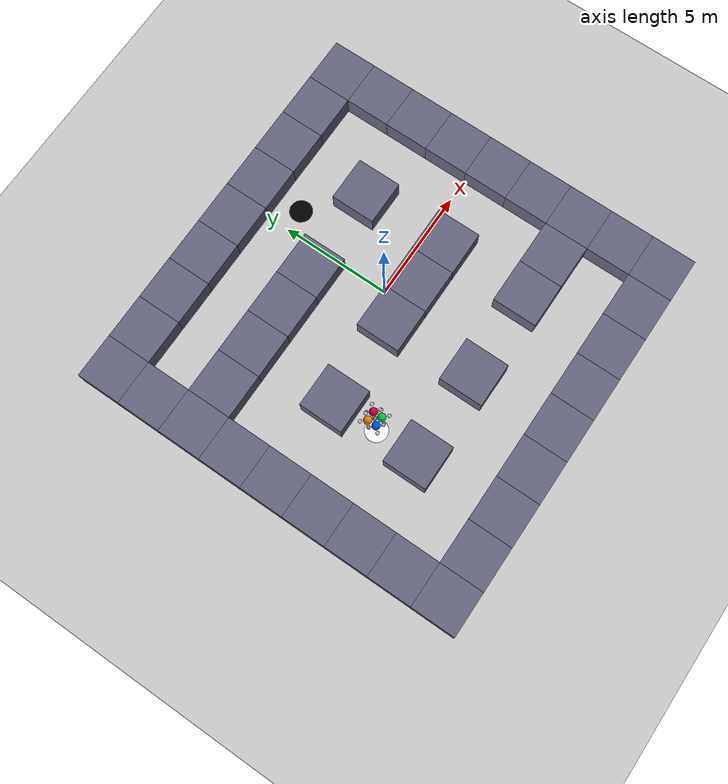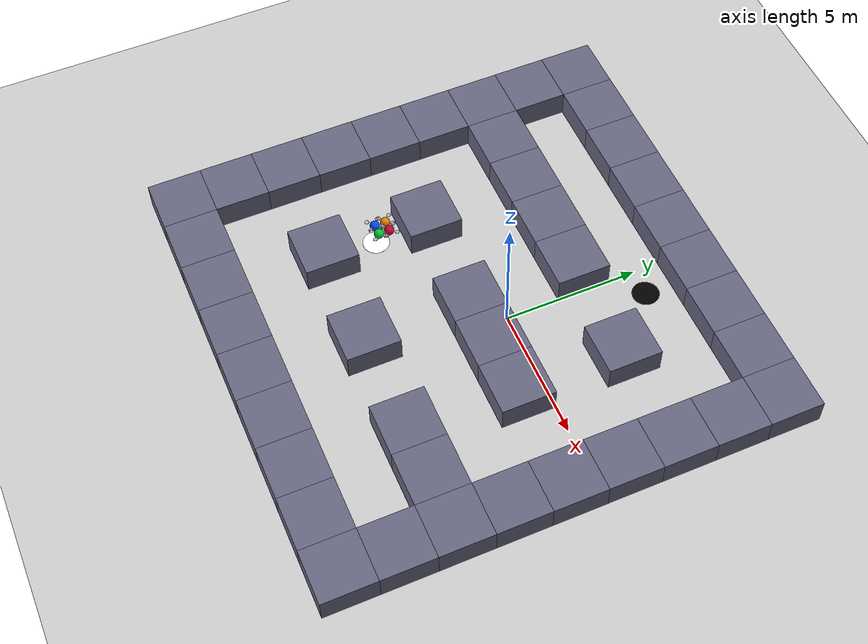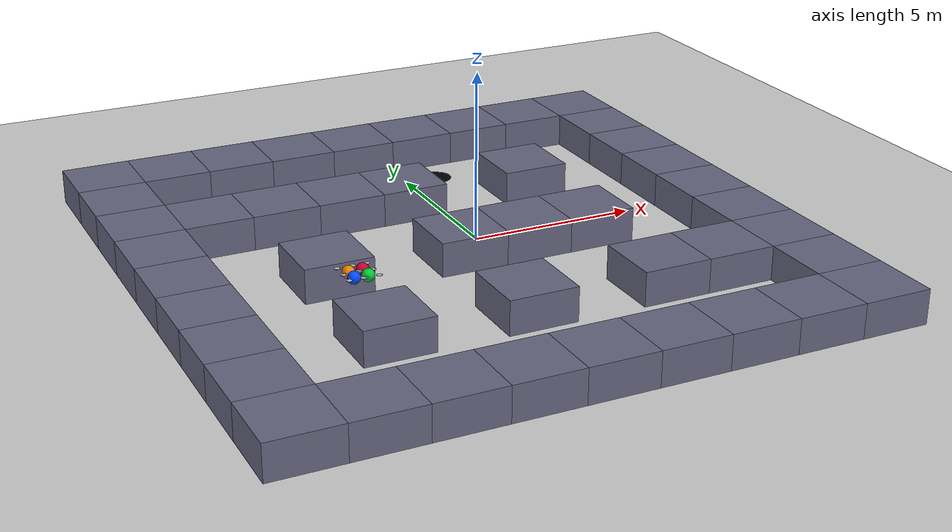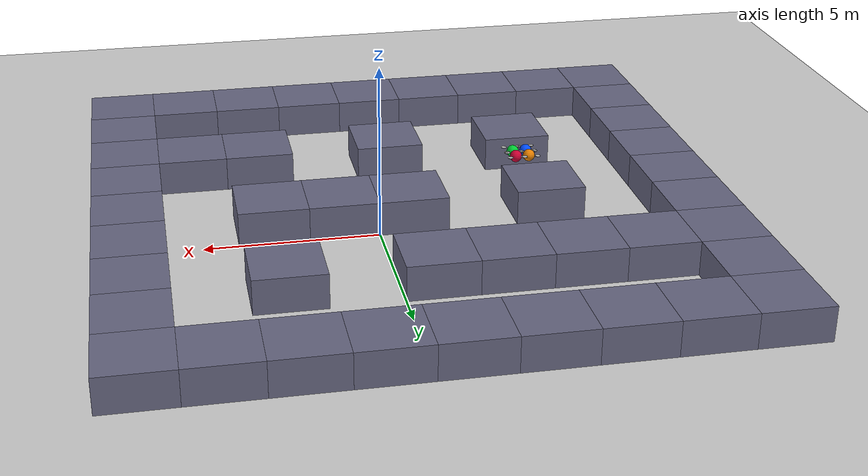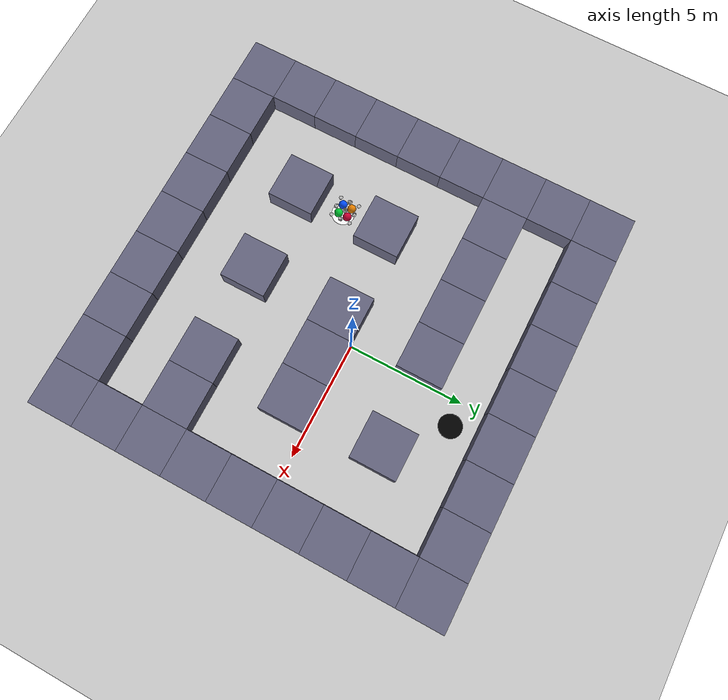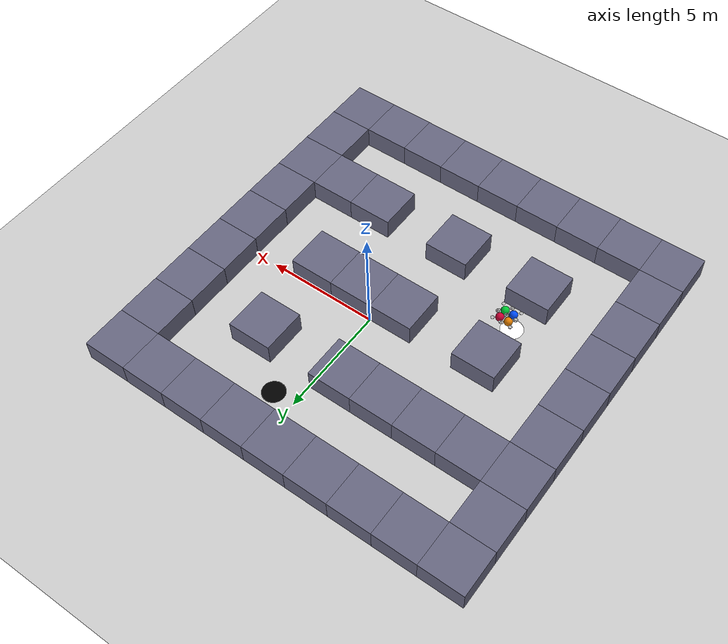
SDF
<sdf version="1.8">
 <world name="stage_5_maze_like.sdf">
  <model name="ground_plane">
   <static>true</static>
   <link name="link">
    <collision name="collision">
     <geometry><plane><normal>0 0 1</normal><size>200 200</size></plane></geometry>
    </collision>
    <visual name="visual">
     <geometry><plane><normal>0 0 1</normal><size>200 200</size></plane></geometry>
     <material><ambient>0.8 0.8 0.8 1</ambient><diffuse>0.8 0.8 0.8 1</diffuse></material>
    </visual>
   </link>
  </model>
  <model name="wall_0">
   <static>true</static>
   <pose>-9.0 -9.0 0.5 0 0 0</pose>
   <link name="link">
    <collision name="collision"><geometry><box><size>2.0 2.0 1.0</size></box></geometry></collision>
    <visual name="visual">
     <geometry><box><size>2.0 2.0 1.0</size></box></geometry>
     <material><ambient>0.3 0.3 0.4 1</ambient><diffuse>0.4 0.4 0.5 1</diffuse></material>
    </visual>
   </link>
  </model>
  <model name="wall_1">
   <static>true</static>
   <pose>-9.0 -7.0 0.5 0 0 0</pose>
   <link name="link">
    <collision name="collision"><geometry><box><size>2.0 2.0 1.0</size></box></geometry></collision>
    <visual name="visual">
     <geometry><box><size>2.0 2.0 1.0</size></box></geometry>
     <material><ambient>0.3 0.3 0.4 1</ambient><diffuse>0.4 0.4 0.5 1</diffuse></material>
    </visual>
   </link>
  </model>
  <model name="wall_2">
   <static>true</static>
   <pose>-9.0 -5.0 0.5 0 0 0</pose>
   <link name="link">
    <collision name="collision"><geometry><box><size>2.0 2.0 1.0</size></box></geometry></collision>
    <visual name="visual">
     <geometry><box><size>2.0 2.0 1.0</size></box></geometry>
     <material><ambient>0.3 0.3 0.4 1</ambient><diffuse>0.4 0.4 0.5 1</diffuse></material>
    </visual>
   </link>
  </model>
  <model name="wall_3">
   <static>true</static>
   <pose>-9.0 -3.0 0.5 0 0 0</pose>
   <link name="link">
    <collision name="collision"><geometry><box><size>2.0 2.0 1.0</size></box></geometry></collision>
    <visual name="visual">
     <geometry><box><size>2.0 2.0 1.0</size></box></geometry>
     <material><ambient>0.3 0.3 0.4 1</ambient><diffuse>0.4 0.4 0.5 1</diffuse></material>
    </visual>
   </link>
  </model>
  <model name="wall_4">
   <static>true</static>
   <pose>-9.0 -1.0 0.5 0 0 0</pose>
   <link name="link">
    <collision name="collision"><geometry><box><size>2.0 2.0 1.0</size></box></geometry></collision>
    <visual name="visual">
     <geometry><box><size>2.0 2.0 1.0</size></box></geometry>
     <material><ambient>0.3 0.3 0.4 1</ambient><diffuse>0.4 0.4 0.5 1</diffuse></material>
    </visual>
   </link>
  </model>
  <model name="wall_5">
   <static>true</static>
   <pose>-9.0 1.0 0.5 0 0 0</pose>
   <link name="link">
    <collision name="collision"><geometry><box><size>2.0 2.0 1.0</size></box></geometry></collision>
    <visual name="visual">
     <geometry><box><size>2.0 2.0 1.0</size></box></geometry>
     <material><ambient>0.3 0.3 0.4 1</ambient><diffuse>0.4 0.4 0.5 1</diffuse></material>
    </visual>
   </link>
  </model>
  <model name="wall_6">
   <static>true</static>
   <pose>-9.0 3.0 0.5 0 0 0</pose>
   <link name="link">
    <collision name="collision"><geometry><box><size>2.0 2.0 1.0</size></box></geometry></collision>
    <visual name="visual">
     <geometry><box><size>2.0 2.0 1.0</size></box></geometry>
     <material><ambient>0.3 0.3 0.4 1</ambient><diffuse>0.4 0.4 0.5 1</diffuse></material>
    </visual>
   </link>
  </model>
  <model name="wall_7">
   <static>true</static>
   <pose>-9.0 5.0 0.5 0 0 0</pose>
   <link name="link">
    <collision name="collision"><geometry><box><size>2.0 2.0 1.0</size></box></geometry></collision>
    <visual name="visual">
     <geometry><box><size>2.0 2.0 1.0</size></box></geometry>
     <material><ambient>0.3 0.3 0.4 1</ambient><diffuse>0.4 0.4 0.5 1</diffuse></material>
    </visual>
   </link>
  </model>
  <model name="wall_8">
   <static>true</static>
   <pose>-9.0 7.0 0.5 0 0 0</pose>
   <link name="link">
    <collision name="collision"><geometry><box><size>2.0 2.0 1.0</size></box></geometry></collision>
    <visual name="visual">
     <geometry><box><size>2.0 2.0 1.0</size></box></geometry>
     <material><ambient>0.3 0.3 0.4 1</ambient><diffuse>0.4 0.4 0.5 1</diffuse></material>
    </visual>
   </link>
  </model>
  <model name="wall_9">
   <static>true</static>
   <pose>-7.0 -9.0 0.5 0 0 0</pose>
   <link name="link">
    <collision name="collision"><geometry><box><size>2.0 2.0 1.0</size></box></geometry></collision>
    <visual name="visual">
     <geometry><box><size>2.0 2.0 1.0</size></box></geometry>
     <material><ambient>0.3 0.3 0.4 1</ambient><diffuse>0.4 0.4 0.5 1</diffuse></material>
    </visual>
   </link>
  </model>
  <model name="wall_10">
   <static>true</static>
   <pose>-7.0 3.0 0.5 0 0 0</pose>
   <link name="link">
    <collision name="collision"><geometry><box><size>2.0 2.0 1.0</size></box></geometry></collision>
    <visual name="visual">
     <geometry><box><size>2.0 2.0 1.0</size></box></geometry>
     <material><ambient>0.3 0.3 0.4 1</ambient><diffuse>0.4 0.4 0.5 1</diffuse></material>
    </visual>
   </link>
  </model>
  <model name="wall_11">
   <static>true</static>
   <pose>-7.0 7.0 0.5 0 0 0</pose>
   <link name="link">
    <collision name="collision"><geometry><box><size>2.0 2.0 1.0</size></box></geometry></collision>
    <visual name="visual">
     <geometry><box><size>2.0 2.0 1.0</size></box></geometry>
     <material><ambient>0.3 0.3 0.4 1</ambient><diffuse>0.4 0.4 0.5 1</diffuse></material>
    </visual>
   </link>
  </model>
  <model name="wall_12">
   <static>true</static>
   <pose>-5.0 -9.0 0.5 0 0 0</pose>
   <link name="link">
    <collision name="collision"><geometry><box><size>2.0 2.0 1.0</size></box></geometry></collision>
    <visual name="visual">
     <geometry><box><size>2.0 2.0 1.0</size></box></geometry>
     <material><ambient>0.3 0.3 0.4 1</ambient><diffuse>0.4 0.4 0.5 1</diffuse></material>
    </visual>
   </link>
  </model>
  <model name="wall_13">
   <static>true</static>
   <pose>-5.0 -5.0 0.5 0 0 0</pose>
   <link name="link">
    <collision name="collision"><geometry><box><size>2.0 2.0 1.0</size></box></geometry></collision>
    <visual name="visual">
     <geometry><box><size>2.0 2.0 1.0</size></box></geometry>
     <material><ambient>0.3 0.3 0.4 1</ambient><diffuse>0.4 0.4 0.5 1</diffuse></material>
    </visual>
   </link>
  </model>
  <model name="wall_14">
   <static>true</static>
   <pose>-5.0 -1.0 0.5 0 0 0</pose>
   <link name="link">
    <collision name="collision"><geometry><box><size>2.0 2.0 1.0</size></box></geometry></collision>
    <visual name="visual">
     <geometry><box><size>2.0 2.0 1.0</size></box></geometry>
     <material><ambient>0.3 0.3 0.4 1</ambient><diffuse>0.4 0.4 0.5 1</diffuse></material>
    </visual>
   </link>
  </model>
  <model name="wall_15">
   <static>true</static>
   <pose>-5.0 3.0 0.5 0 0 0</pose>
   <link name="link">
    <collision name="collision"><geometry><box><size>2.0 2.0 1.0</size></box></geometry></collision>
    <visual name="visual">
     <geometry><box><size>2.0 2.0 1.0</size></box></geometry>
     <material><ambient>0.3 0.3 0.4 1</ambient><diffuse>0.4 0.4 0.5 1</diffuse></material>
    </visual>
   </link>
  </model>
  <model name="wall_16">
   <static>true</static>
   <pose>-5.0 7.0 0.5 0 0 0</pose>
   <link name="link">
    <collision name="collision"><geometry><box><size>2.0 2.0 1.0</size></box></geometry></collision>
    <visual name="visual">
     <geometry><box><size>2.0 2.0 1.0</size></box></geometry>
     <material><ambient>0.3 0.3 0.4 1</ambient><diffuse>0.4 0.4 0.5 1</diffuse></material>
    </visual>
   </link>
  </model>
  <model name="wall_17">
   <static>true</static>
   <pose>-3.0 -9.0 0.5 0 0 0</pose>
   <link name="link">
    <collision name="collision"><geometry><box><size>2.0 2.0 1.0</size></box></geometry></collision>
    <visual name="visual">
     <geometry><box><size>2.0 2.0 1.0</size></box></geometry>
     <material><ambient>0.3 0.3 0.4 1</ambient><diffuse>0.4 0.4 0.5 1</diffuse></material>
    </visual>
   </link>
  </model>
  <model name="wall_18">
   <static>true</static>
   <pose>-3.0 3.0 0.5 0 0 0</pose>
   <link name="link">
    <collision name="collision"><geometry><box><size>2.0 2.0 1.0</size></box></geometry></collision>
    <visual name="visual">
     <geometry><box><size>2.0 2.0 1.0</size></box></geometry>
     <material><ambient>0.3 0.3 0.4 1</ambient><diffuse>0.4 0.4 0.5 1</diffuse></material>
    </visual>
   </link>
  </model>
  <model name="wall_19">
   <static>true</static>
   <pose>-3.0 7.0 0.5 0 0 0</pose>
   <link name="link">
    <collision name="collision"><geometry><box><size>2.0 2.0 1.0</size></box></geometry></collision>
    <visual name="visual">
     <geometry><box><size>2.0 2.0 1.0</size></box></geometry>
     <material><ambient>0.3 0.3 0.4 1</ambient><diffuse>0.4 0.4 0.5 1</diffuse></material>
    </visual>
   </link>
  </model>
  <model name="wall_20">
   <static>true</static>
   <pose>-1.0 -9.0 0.5 0 0 0</pose>
   <link name="link">
    <collision name="collision"><geometry><box><size>2.0 2.0 1.0</size></box></geometry></collision>
    <visual name="visual">
     <geometry><box><size>2.0 2.0 1.0</size></box></geometry>
     <material><ambient>0.3 0.3 0.4 1</ambient><diffuse>0.4 0.4 0.5 1</diffuse></material>
    </visual>
   </link>
  </model>
  <model name="wall_21">
   <static>true</static>
   <pose>-1.0 -5.0 0.5 0 0 0</pose>
   <link name="link">
    <collision name="collision"><geometry><box><size>2.0 2.0 1.0</size></box></geometry></collision>
    <visual name="visual">
     <geometry><box><size>2.0 2.0 1.0</size></box></geometry>
     <material><ambient>0.3 0.3 0.4 1</ambient><diffuse>0.4 0.4 0.5 1</diffuse></material>
    </visual>
   </link>
  </model>
  <model name="wall_22">
   <static>true</static>
   <pose>-1.0 -1.0 0.5 0 0 0</pose>
   <link name="link">
    <collision name="collision"><geometry><box><size>2.0 2.0 1.0</size></box></geometry></collision>
    <visual name="visual">
     <geometry><box><size>2.0 2.0 1.0</size></box></geometry>
     <material><ambient>0.3 0.3 0.4 1</ambient><diffuse>0.4 0.4 0.5 1</diffuse></material>
    </visual>
   </link>
  </model>
  <model name="wall_23">
   <static>true</static>
   <pose>-1.0 3.0 0.5 0 0 0</pose>
   <link name="link">
    <collision name="collision"><geometry><box><size>2.0 2.0 1.0</size></box></geometry></collision>
    <visual name="visual">
     <geometry><box><size>2.0 2.0 1.0</size></box></geometry>
     <material><ambient>0.3 0.3 0.4 1</ambient><diffuse>0.4 0.4 0.5 1</diffuse></material>
    </visual>
   </link>
  </model>
  <model name="wall_24">
   <static>true</static>
   <pose>-1.0 7.0 0.5 0 0 0</pose>
   <link name="link">
    <collision name="collision"><geometry><box><size>2.0 2.0 1.0</size></box></geometry></collision>
    <visual name="visual">
     <geometry><box><size>2.0 2.0 1.0</size></box></geometry>
     <material><ambient>0.3 0.3 0.4 1</ambient><diffuse>0.4 0.4 0.5 1</diffuse></material>
    </visual>
   </link>
  </model>
  <model name="wall_25">
   <static>true</static>
   <pose>1.0 -9.0 0.5 0 0 0</pose>
   <link name="link">
    <collision name="collision"><geometry><box><size>2.0 2.0 1.0</size></box></geometry></collision>
    <visual name="visual">
     <geometry><box><size>2.0 2.0 1.0</size></box></geometry>
     <material><ambient>0.3 0.3 0.4 1</ambient><diffuse>0.4 0.4 0.5 1</diffuse></material>
    </visual>
   </link>
  </model>
  <model name="wall_26">
   <static>true</static>
   <pose>1.0 -1.0 0.5 0 0 0</pose>
   <link name="link">
    <collision name="collision"><geometry><box><size>2.0 2.0 1.0</size></box></geometry></collision>
    <visual name="visual">
     <geometry><box><size>2.0 2.0 1.0</size></box></geometry>
     <material><ambient>0.3 0.3 0.4 1</ambient><diffuse>0.4 0.4 0.5 1</diffuse></material>
    </visual>
   </link>
  </model>
  <model name="wall_27">
   <static>true</static>
   <pose>1.0 7.0 0.5 0 0 0</pose>
   <link name="link">
    <collision name="collision"><geometry><box><size>2.0 2.0 1.0</size></box></geometry></collision>
    <visual name="visual">
     <geometry><box><size>2.0 2.0 1.0</size></box></geometry>
     <material><ambient>0.3 0.3 0.4 1</ambient><diffuse>0.4 0.4 0.5 1</diffuse></material>
    </visual>
   </link>
  </model>
  <model name="wall_28">
   <static>true</static>
   <pose>3.0 -9.0 0.5 0 0 0</pose>
   <link name="link">
    <collision name="collision"><geometry><box><size>2.0 2.0 1.0</size></box></geometry></collision>
    <visual name="visual">
     <geometry><box><size>2.0 2.0 1.0</size></box></geometry>
     <material><ambient>0.3 0.3 0.4 1</ambient><diffuse>0.4 0.4 0.5 1</diffuse></material>
    </visual>
   </link>
  </model>
  <model name="wall_29">
   <static>true</static>
   <pose>3.0 -5.0 0.5 0 0 0</pose>
   <link name="link">
    <collision name="collision"><geometry><box><size>2.0 2.0 1.0</size></box></geometry></collision>
    <visual name="visual">
     <geometry><box><size>2.0 2.0 1.0</size></box></geometry>
     <material><ambient>0.3 0.3 0.4 1</ambient><diffuse>0.4 0.4 0.5 1</diffuse></material>
    </visual>
   </link>
  </model>
  <model name="wall_30">
   <static>true</static>
   <pose>3.0 -1.0 0.5 0 0 0</pose>
   <link name="link">
    <collision name="collision"><geometry><box><size>2.0 2.0 1.0</size></box></geometry></collision>
    <visual name="visual">
     <geometry><box><size>2.0 2.0 1.0</size></box></geometry>
     <material><ambient>0.3 0.3 0.4 1</ambient><diffuse>0.4 0.4 0.5 1</diffuse></material>
    </visual>
   </link>
  </model>
  <model name="wall_31">
   <static>true</static>
   <pose>3.0 3.0 0.5 0 0 0</pose>
   <link name="link">
    <collision name="collision"><geometry><box><size>2.0 2.0 1.0</size></box></geometry></collision>
    <visual name="visual">
     <geometry><box><size>2.0 2.0 1.0</size></box></geometry>
     <material><ambient>0.3 0.3 0.4 1</ambient><diffuse>0.4 0.4 0.5 1</diffuse></material>
    </visual>
   </link>
  </model>
  <model name="wall_32">
   <static>true</static>
   <pose>3.0 7.0 0.5 0 0 0</pose>
   <link name="link">
    <collision name="collision"><geometry><box><size>2.0 2.0 1.0</size></box></geometry></collision>
    <visual name="visual">
     <geometry><box><size>2.0 2.0 1.0</size></box></geometry>
     <material><ambient>0.3 0.3 0.4 1</ambient><diffuse>0.4 0.4 0.5 1</diffuse></material>
    </visual>
   </link>
  </model>
  <model name="wall_33">
   <static>true</static>
   <pose>5.0 -9.0 0.5 0 0 0</pose>
   <link name="link">
    <collision name="collision"><geometry><box><size>2.0 2.0 1.0</size></box></geometry></collision>
    <visual name="visual">
     <geometry><box><size>2.0 2.0 1.0</size></box></geometry>
     <material><ambient>0.3 0.3 0.4 1</ambient><diffuse>0.4 0.4 0.5 1</diffuse></material>
    </visual>
   </link>
  </model>
  <model name="wall_34">
   <static>true</static>
   <pose>5.0 -5.0 0.5 0 0 0</pose>
   <link name="link">
    <collision name="collision"><geometry><box><size>2.0 2.0 1.0</size></box></geometry></collision>
    <visual name="visual">
     <geometry><box><size>2.0 2.0 1.0</size></box></geometry>
     <material><ambient>0.3 0.3 0.4 1</ambient><diffuse>0.4 0.4 0.5 1</diffuse></material>
    </visual>
   </link>
  </model>
  <model name="wall_35">
   <static>true</static>
   <pose>5.0 7.0 0.5 0 0 0</pose>
   <link name="link">
    <collision name="collision"><geometry><box><size>2.0 2.0 1.0</size></box></geometry></collision>
    <visual name="visual">
     <geometry><box><size>2.0 2.0 1.0</size></box></geometry>
     <material><ambient>0.3 0.3 0.4 1</ambient><diffuse>0.4 0.4 0.5 1</diffuse></material>
    </visual>
   </link>
  </model>
  <model name="wall_36">
   <static>true</static>
   <pose>7.0 -9.0 0.5 0 0 0</pose>
   <link name="link">
    <collision name="collision"><geometry><box><size>2.0 2.0 1.0</size></box></geometry></collision>
    <visual name="visual">
     <geometry><box><size>2.0 2.0 1.0</size></box></geometry>
     <material><ambient>0.3 0.3 0.4 1</ambient><diffuse>0.4 0.4 0.5 1</diffuse></material>
    </visual>
   </link>
  </model>
  <model name="wall_37">
   <static>true</static>
   <pose>7.0 -7.0 0.5 0 0 0</pose>
   <link name="link">
    <collision name="collision"><geometry><box><size>2.0 2.0 1.0</size></box></geometry></collision>
    <visual name="visual">
     <geometry><box><size>2.0 2.0 1.0</size></box></geometry>
     <material><ambient>0.3 0.3 0.4 1</ambient><diffuse>0.4 0.4 0.5 1</diffuse></material>
    </visual>
   </link>
  </model>
  <model name="wall_38">
   <static>true</static>
   <pose>7.0 -5.0 0.5 0 0 0</pose>
   <link name="link">
    <collision name="collision"><geometry><box><size>2.0 2.0 1.0</size></box></geometry></collision>
    <visual name="visual">
     <geometry><box><size>2.0 2.0 1.0</size></box></geometry>
     <material><ambient>0.3 0.3 0.4 1</ambient><diffuse>0.4 0.4 0.5 1</diffuse></material>
    </visual>
   </link>
  </model>
  <model name="wall_39">
   <static>true</static>
   <pose>7.0 -3.0 0.5 0 0 0</pose>
   <link name="link">
    <collision name="collision"><geometry><box><size>2.0 2.0 1.0</size></box></geometry></collision>
    <visual name="visual">
     <geometry><box><size>2.0 2.0 1.0</size></box></geometry>
     <material><ambient>0.3 0.3 0.4 1</ambient><diffuse>0.4 0.4 0.5 1</diffuse></material>
    </visual>
   </link>
  </model>
  <model name="wall_40">
   <static>true</static>
   <pose>7.0 -1.0 0.5 0 0 0</pose>
   <link name="link">
    <collision name="collision"><geometry><box><size>2.0 2.0 1.0</size></box></geometry></collision>
    <visual name="visual">
     <geometry><box><size>2.0 2.0 1.0</size></box></geometry>
     <material><ambient>0.3 0.3 0.4 1</ambient><diffuse>0.4 0.4 0.5 1</diffuse></material>
    </visual>
   </link>
  </model>
  <model name="wall_41">
   <static>true</static>
   <pose>7.0 1.0 0.5 0 0 0</pose>
   <link name="link">
    <collision name="collision"><geometry><box><size>2.0 2.0 1.0</size></box></geometry></collision>
    <visual name="visual">
     <geometry><box><size>2.0 2.0 1.0</size></box></geometry>
     <material><ambient>0.3 0.3 0.4 1</ambient><diffuse>0.4 0.4 0.5 1</diffuse></material>
    </visual>
   </link>
  </model>
  <model name="wall_42">
   <static>true</static>
   <pose>7.0 3.0 0.5 0 0 0</pose>
   <link name="link">
    <collision name="collision"><geometry><box><size>2.0 2.0 1.0</size></box></geometry></collision>
    <visual name="visual">
     <geometry><box><size>2.0 2.0 1.0</size></box></geometry>
     <material><ambient>0.3 0.3 0.4 1</ambient><diffuse>0.4 0.4 0.5 1</diffuse></material>
    </visual>
   </link>
  </model>
  <model name="wall_43">
   <static>true</static>
   <pose>7.0 5.0 0.5 0 0 0</pose>
   <link name="link">
    <collision name="collision"><geometry><box><size>2.0 2.0 1.0</size></box></geometry></collision>
    <visual name="visual">
     <geometry><box><size>2.0 2.0 1.0</size></box></geometry>
     <material><ambient>0.3 0.3 0.4 1</ambient><diffuse>0.4 0.4 0.5 1</diffuse></material>
    </visual>
   </link>
  </model>
  <model name="wall_44">
   <static>true</static>
   <pose>7.0 7.0 0.5 0 0 0</pose>
   <link name="link">
    <collision name="collision"><geometry><box><size>2.0 2.0 1.0</size></box></geometry></collision>
    <visual name="visual">
     <geometry><box><size>2.0 2.0 1.0</size></box></geometry>
     <material><ambient>0.3 0.3 0.4 1</ambient><diffuse>0.4 0.4 0.5 1</diffuse></material>
    </visual>
   </link>
  </model>
  <model name="start_marker">
   <static>true</static>
   <pose>-5.0 -3.0 0.001 0 0 0</pose>
   <link name="link">
    <visual name="visual">
     <geometry><cylinder><radius>0.5</radius><length>0.002</length></cylinder></geometry>
     <material><ambient>1 1 1 1</ambient><diffuse>1 1 1 1</diffuse><emissive>0 0 0 1</emissive></material>
    </visual>
   </link>
  </model>
  <model name="end_marker">
   <static>true</static>
   <pose>1.0 5.0 0.001 0 0 0</pose>
   <link name="link">
    <visual name="visual">
     <geometry><cylinder><radius>0.5</radius><length>0.002</length></cylinder></geometry>
     <material><ambient>0 0 0 1</ambient><diffuse>0 0 0 1</diffuse><emissive>0 0 0 1</emissive></material>
    </visual>
   </link>
  </model>
  <include>
   <uri>file:///home/aiz/下载/基于ROS2 Jazzy与Gazebo Harmonic仿真环境的迷宫求解机器人(2)/src/models/uav1</uri>
   <name>uav1</name>
   <pose>-5.000 -3.000 1.00 0 0 0</pose>
  </include>
  <include>
   <uri>file:///home/aiz/下载/基于ROS2 Jazzy与Gazebo Harmonic仿真环境的迷宫求解机器人(2)/src/models/uav2</uri>
   <name>uav2</name>
   <pose>-4.600 -3.000 1.00 0 0 0</pose>
  </include>
  <include>
   <uri>file:///home/aiz/下载/基于ROS2 Jazzy与Gazebo Harmonic仿真环境的迷宫求解机器人(2)/src/models/uav3</uri>
   <name>uav3</name>
   <pose>-5.000 -2.600 1.00 0 0 0</pose>
  </include>
  <include>
   <uri>file:///home/aiz/下载/基于ROS2 Jazzy与Gazebo Harmonic仿真环境的迷宫求解机器人(2)/src/models/uav4</uri>
   <name>uav4</name>
   <pose>-4.600 -2.600 1.00 0 0 0</pose>
  </include>
 </world>
</sdf>
